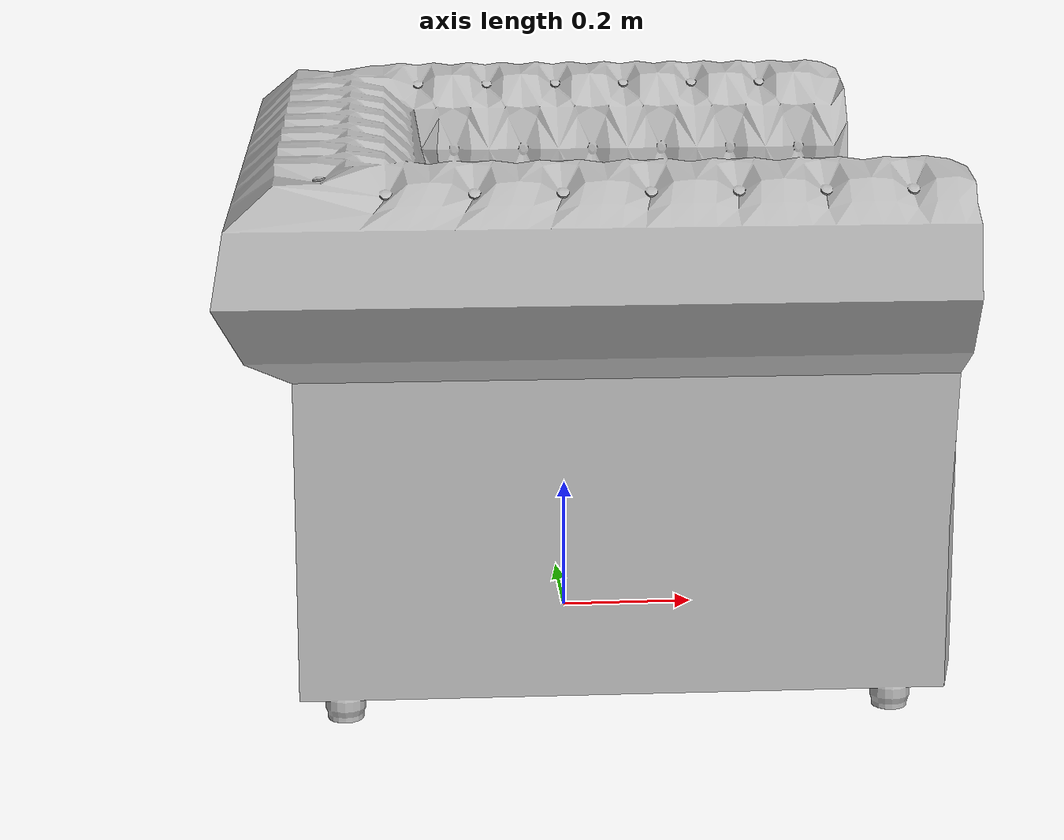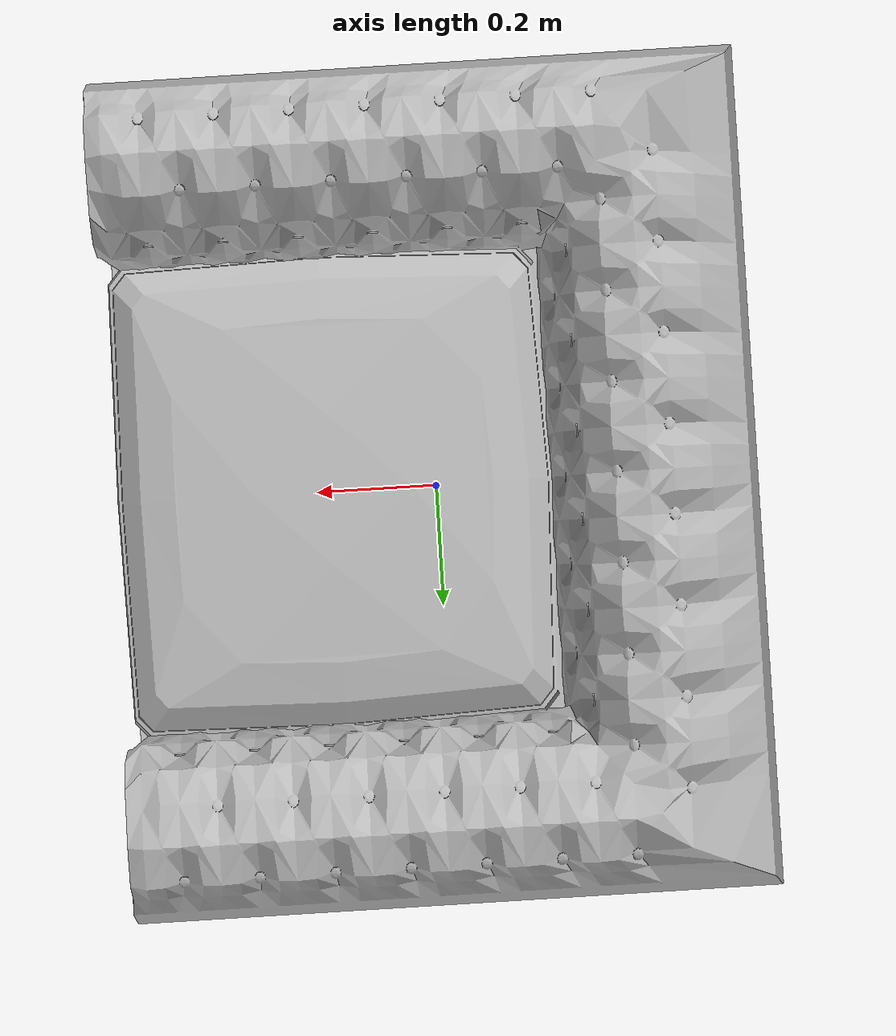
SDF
<?xml version='1.0'?>
<sdf version='1.4'>
  <model name='261'>
    <pose>0 0 0 0 0 0</pose>
    <static>true</static>
    <link name='link'>
      <collision name='collision'>
        <pose>0 0 0 0 0 0</pose>
        <geometry>
          <box>
            <size>1.00905 1.31 2</size>
          </box>
        </geometry>
      </collision>
      <visual name='visual'>
        <pose>0 0 0 0 0 0</pose>
        <geometry>
          <mesh><uri>model://261/261.dae</uri></mesh>
        </geometry>
      </visual>
    </link>
  </model>
</sdf>
